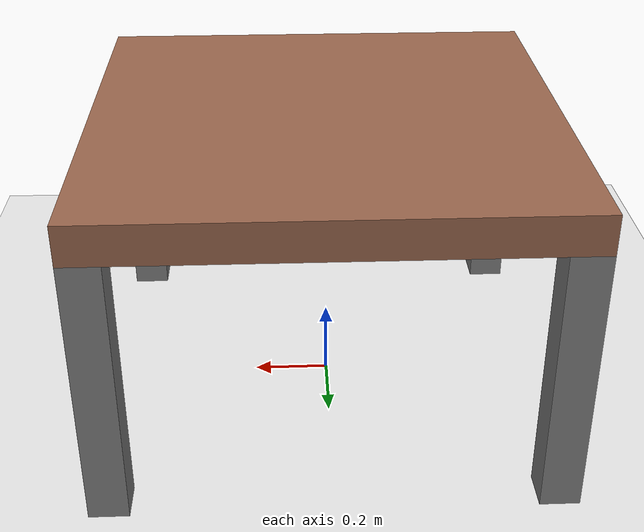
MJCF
<mujoco model="table">

    <worldbody>

        <!-- Floor -->
        <geom type="plane" size="5 5 0.1" rgba="0.9 0.9 0.9 1"/>

        <!-- Table -->
        <body name="table" pos="0 0 0" mocap="true">
            <geom name="top"
                  type="box"
                  pos="0 0 0.75"
                  size="0.6 0.6 0.05"
                  rgba="0.6 0.4 0.3 1"/>

            <geom name="leg1" type="box" pos=" 0.55  0.55 0.35" size="0.05 0.05 0.35"/>
            <geom name="leg2" type="box" pos="-0.55  0.55 0.35" size="0.05 0.05 0.35"/>
            <geom name="leg3" type="box" pos=" 0.55 -0.55 0.35" size="0.05 0.05 0.35"/>
            <geom name="leg4" type="box" pos="-0.55 -0.55 0.35" size="0.05 0.05 0.35"/>
        </body>

    </worldbody>

</mujoco>
